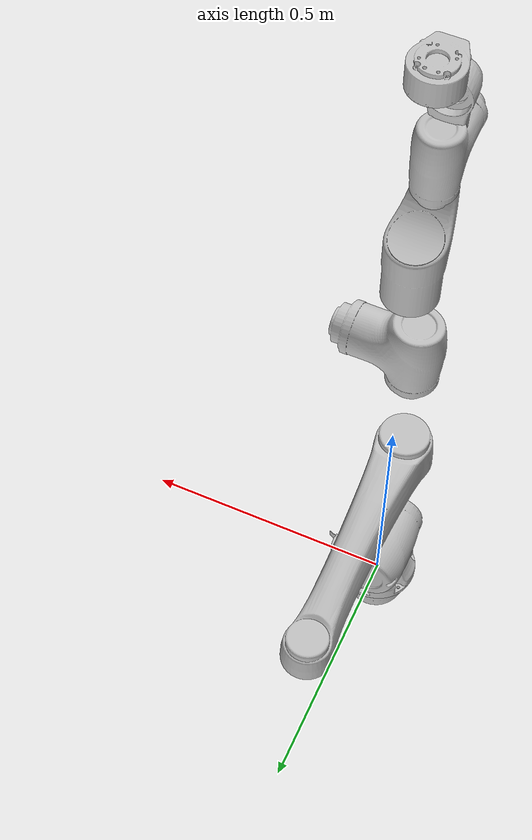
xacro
<?xml version="1.0"?>

<robot name="elfin5_l" xmlns:xacro="http://wiki.ros.org/xacro">

  <xacro:arg name="use_real_hardware" default="true" />
  <xacro:arg name="use_fake_hardware" default="false" />
  <!-- Load TRANSMISSION file: -->
  <xacro:include filename="$(find elfin5_l_ros2_gazebo)/urdf/elfin5_l_transmission.xacro" />
  <!-- Load GAZEBO/ROS2_CONTROL file: -->
  <xacro:include filename="$(find elfin5_l_ros2_gazebo)/urdf/elfin5_l_gazebo.xacro" />

  <xacro:property name="PI" value="3.1415926535897931"/>

  <xacro:property name="density" value="3.09"/>

    <!-- TRANSMISSION: -->
    <xacro:elfin5_l_transmission />
    <!-- GAZEBO - ROS2_CONTROL: -->
    <xacro:elfin5_l_gazebo
    use_real_hardware="$(arg use_real_hardware)"
    use_fake_hardware="$(arg use_fake_hardware)"/>

  <link name="world" />

  <joint name="world_base" type="fixed">
    <origin
      xyz="0 0 0"
      rpy="0 0 0" />
    <parent
      link="world" />
    <child
      link="elfin_base_link" />
  </joint>

  <link name="elfin_base_link" />

  <joint name="elfin_base_joint" type="fixed">
    <origin
      xyz="0 0 0"
      rpy="0 0 0" />
    <parent
      link="elfin_base_link" />
    <child
      link="elfin_base" />
  </joint>

 <link
    name="elfin_base">
    <inertial>
      <origin
        xyz="-0.0007634 5.6362E-06 0.030441"
        rpy="0 0 0" />
      <mass
        value="0.97022" />
      <inertia
        ixx="0.0015769"
        ixy="1.2223E-07"
        ixz="-2.1696E-05"
        iyy="0.0014456"
        iyz="-6.1863E-08"
        izz="0.0023657" />
    </inertial>
    <visual>
      <origin
        xyz="0 0 0"
        rpy="0 0 0" />
      <geometry>
        <mesh
          filename="file://$(find elfin_description)/meshes/elfin5_l/elfin_base_link.STL" />
      </geometry>
      <material
        name="">
        <color
          rgba="0.75294 0.75294 0.75294 1" />
      </material>
    </visual>
    <collision>
      <origin
        xyz="0 0 0"
        rpy="0 0 0" />
      <geometry>
        <mesh
          filename="file://$(find elfin_description)/meshes/elfin5_l/elfin_base_link.STL" />
      </geometry>
    </collision>
  </link>
  <link
    name="elfin_link1">
    <inertial>
      <origin
        xyz="3.3881E-06 -0.0059071 0.10092"
        rpy="0 0 0" />
      <mass
        value="3.1643" />
      <inertia
        ixx="0.012965"
        ixy="6.1671E-08"
        ixz="4.3957E-07"
        iyy="0.012144"
        iyz="0.0023647"
        izz="0.0069485" />
    </inertial>
    <visual>
      <origin
        xyz="0 0 0"
        rpy="0 0 0" />
      <geometry>
        <mesh
          filename="file://$(find elfin_description)/meshes/elfin5_l/elfin_link1.STL" />
      </geometry>
      <material
        name="">
        <color
          rgba="0.75294 0.75294 0.75294 1" />
      </material>
    </visual>
    <collision>
      <origin
        xyz="0 0 0"
        rpy="0 0 0" />
      <geometry>
        <mesh
          filename="file://$(find elfin_description)/meshes/elfin5_l/elfin_link1.STL" />
      </geometry>
    </collision>
  </link>
  <joint
    name="elfin_joint1"
    type="revolute">
    <origin
      xyz="0 0 0.082"
      rpy="0 0 0" />
    <parent
      link="elfin_base" />
    <child
      link="elfin_link1" />
    <axis
      xyz="0 0 1" />
    <limit
      lower="-3.14"
      upper="3.14"
      effort="420"
      velocity="1.57" />
  </joint>
  <link
    name="elfin_link2">
    <inertial>
      <origin
        xyz="-1.114E-05 -0.049377 0.19342"
        rpy="0 0 0" />
      <mass
        value="3.1869" />
      <inertia
        ixx="0.073265"
        ixy="5.1353E-07"
        ixz="-2.6175E-06"
        iyy="0.073984"
        iyz="-0.0020394"
        izz="0.0031464" />
    </inertial>
    <visual>
      <origin
        xyz="0 0 0"
        rpy="0 0 0" />
      <geometry>
        <mesh
          filename="file://$(find elfin_description)/meshes/elfin5_l/elfin_link2.STL" />
      </geometry>
      <material
        name="">
        <color
          rgba="0.75294 0.75294 0.75294 1" />
      </material>
    </visual>
    <collision>
      <origin
        xyz="0 0 0"
        rpy="0 0 0" />
      <geometry>
        <mesh
          filename="file://$(find elfin_description)/meshes/elfin5_l/elfin_link2.STL" />
      </geometry>
    </collision>
  </link>
  <joint
    name="elfin_joint2"
    type="revolute">
    <origin
      xyz="0 -0.07785 0.138"
      rpy="0 0 0" />
    <parent
      link="elfin_link1" />
    <child
      link="elfin_link2" />
    <axis
      xyz="0 -1 0" />
    <limit
      lower="-2.35"
      upper="2.35"
      effort="420"
      velocity="1.57" />
  </joint>
  <link
    name="elfin_link3">
    <inertial>
      <origin
        xyz="9.3762E-06 0.066365 0.030316"
        rpy="0 0 0" />
      <mass
        value="1.9252" />
      <inertia
        ixx="0.0058726"
        ixy="7.1997E-07"
        ixz="-2.9335E-07"
        iyy="0.0051729"
        iyz="-0.0011237"
        izz="0.0031696" />
    </inertial>
    <visual>
      <origin
        xyz="0 0 0"
        rpy="0 0 0" />
      <geometry>
        <mesh
          filename="file://$(find elfin_description)/meshes/elfin5_l/elfin_link3.STL" />
      </geometry>
      <material
        name="">
        <color
          rgba="0.75294 0.75294 0.75294 1" />
      </material>
    </visual>
    <collision>
      <origin
        xyz="0 0 0"
        rpy="0 0 0" />
      <geometry>
        <mesh
          filename="file://$(find elfin_description)/meshes/elfin5_l/elfin_link3.STL" />
      </geometry>
    </collision>
  </link>
  <joint
    name="elfin_joint3"
    type="revolute">
    <origin
      xyz="0 0.00585 0.455"
      rpy="0 0 0" />
    <parent
      link="elfin_link2" />
    <child
      link="elfin_link3" />
    <axis
      xyz="0 1 0" />
    <limit
      lower="-2.61"
      upper="2.61"
      effort="200"
      velocity="1.57" />
  </joint>
  <link
    name="elfin_link4">
    <inertial>
      <origin
        xyz="-2.4659E-05 -0.042655 0.16376"
        rpy="0 0 0" />
      <mass
        value="1.94" />
      <inertia
        ixx="0.025102"
        ixy="-2.7421E-06"
        ixz="8.4771E-06"
        iyy="0.022005"
        iyz="0.0071908"
        izz="0.0050335" />
    </inertial>
    <visual>
      <origin
        xyz="0 0 0"
        rpy="0 0 0" />
      <geometry>
        <mesh
          filename="file://$(find elfin_description)/meshes/elfin5_l/elfin_link4.STL" />
      </geometry>
      <material
        name="">
        <color
          rgba="0.75294 0.75294 0.75294 1" />
      </material>
    </visual>
    <collision>
      <origin
        xyz="0 0 0"
        rpy="0 0 0" />
      <geometry>
        <mesh
          filename="file://$(find elfin_description)/meshes/elfin5_l/elfin_link4.STL" />
      </geometry>
    </collision>
  </link>
  <joint
    name="elfin_joint4"
    type="revolute">
    <origin
      xyz="0 0.072 0.117"
      rpy="0 0 0" />
    <parent
      link="elfin_link3" />
    <child
      link="elfin_link4" />
    <axis
      xyz="0 0 1" />
    <limit
      lower="-3.14"
      upper="3.14"
      effort="200"
      velocity="1.57" />
  </joint>
  <link
    name="elfin_link5">
    <inertial>
      <origin
        xyz="-4.9859E-07 0.055949 0.022517"
        rpy="0 0 0" />
      <mass
        value="0.9902" />
      <inertia
        ixx="0.0019311"
        ixy="1.0751E-07"
        ixz="-3.2968E-08"
        iyy="0.0016081"
        iyz="-0.00037481"
        izz="0.0010972" />
    </inertial>
    <visual>
      <origin
        xyz="0 0 0"
        rpy="0 0 0" />
      <geometry>
        <mesh
          filename="file://$(find elfin_description)/meshes/elfin5_l/elfin_link5.STL" />
      </geometry>
      <material
        name="">
        <color
          rgba="0.75294 0.75294 0.75294 1" />
      </material>
    </visual>
    <collision>
      <origin
        xyz="0 0 0"
        rpy="0 0 0" />
      <geometry>
        <mesh
          filename="file://$(find elfin_description)/meshes/elfin5_l/elfin_link5.STL" />
      </geometry>
    </collision>
  </link>
  <joint
    name="elfin_joint5"
    type="revolute">
    <origin
      xyz="0 -0.060249 0.378"
      rpy="0 0 0" />
    <parent
      link="elfin_link4" />
    <child
      link="elfin_link5" />
    <axis
      xyz="0 1 0" />
    <limit
      lower="-2.56"
      upper="2.56"
      effort="69"
      velocity="1.57" />
  </joint>
  <link
    name="elfin_link6">
    <inertial>
      <origin
        xyz="0.00019949 -0.0025865 0.030984"
        rpy="0 0 0" />
      <mass
        value="0.22732" />
      <inertia
        ixx="0.000125"
        ixy="-2.5767E-07"
        ixz="7.1113E-09"
        iyy="0.00013055"
        iyz="1.8454E-07"
        izz="0.00020378" />
    </inertial>
    <visual>
      <origin
        xyz="0 0 0"
        rpy="0 0 0" />
      <geometry>
        <mesh
          filename="file://$(find elfin_description)/meshes/elfin5_l/elfin_link6.STL" />
      </geometry>
      <material
        name="">
        <color
          rgba="0.75294 0.75294 0.75294 1" />
      </material>
    </visual>
    <collision>
      <origin
        xyz="0 0 0"
        rpy="0 0 0" />
      <geometry>
        <mesh
          filename="file://$(find elfin_description)/meshes/elfin5_l/elfin_link6.STL" />
      </geometry>
    </collision>
  </link>
  <joint
    name="elfin_joint6"
    type="revolute">
    <origin
      xyz="0 0.060249 0.09175"
      rpy="0 0 0" />
    <parent
      link="elfin_link5" />
    <child
      link="elfin_link6" />
    <axis
      xyz="0 0 1" />
    <limit
      lower="-3.14"
      upper="3.14"
      effort="69"
      velocity="1.57" />
  </joint>

  <link name="elfin_end_link"/>

  <joint
    name="elfin_end_joint"
    type="fixed">
    <origin
      xyz="0.0 0.0 0.05425"
      rpy="0 0 0" />
    <parent
      link="elfin_link6" />
    <child
      link="elfin_end_link" />
    <axis
      xyz="0 0 0" />
  </joint>

  <link name="elfin_dummy_gripper"/>

  <joint name="elfin_dummy_joint" type="fixed">
    <origin
      xyz="0 0.109 0"
      rpy="-1.5708 1.5708 0" />
    <parent
      link="elfin_link6" />
    <child
      link="elfin_dummy_gripper" />
  </joint>

</robot>
